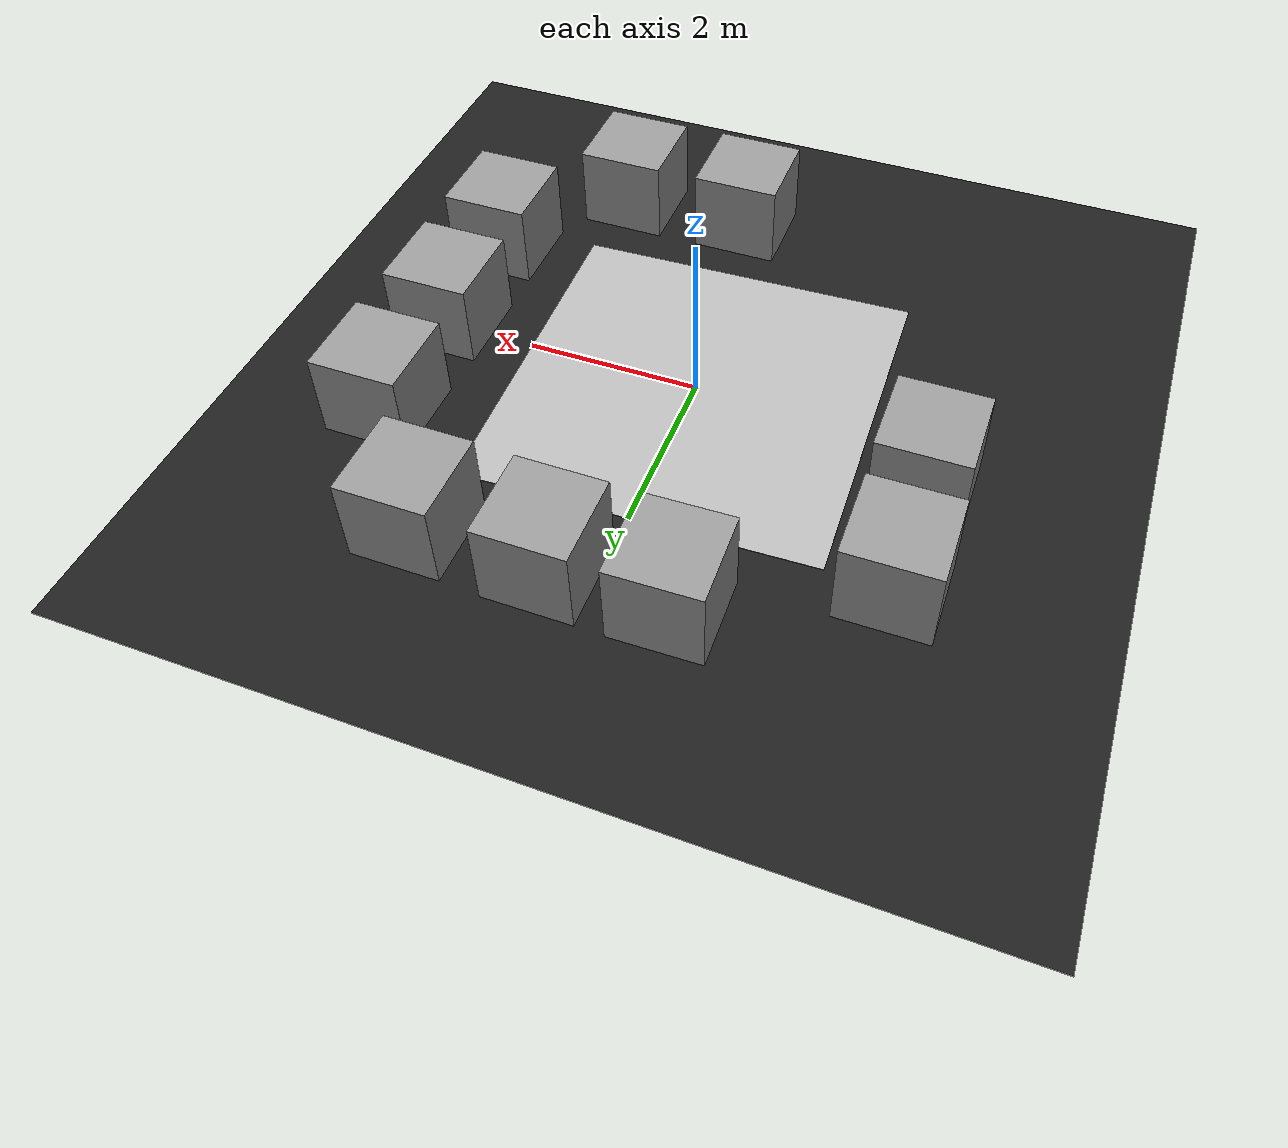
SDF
<sdf version="1.7">
 <world name="default">
  <scene>
   <ambient>0 0 0 1</ambient>
   <shadows>0</shadows>
   <grid>0</grid>
   <background>0.7 0.7 0.7 1</background>
  </scene>
  <model name="course">
   <static>1</static>
   <link name="course_link">
    <collision name="course_collision">
     <geometry><plane><normal>0 0 1</normal><size>4 4</size></plane></geometry>
     <surface><friction><ode><mu>100</mu><mu2>50</mu2></ode></friction></surface>
    </collision>
    <visual name="course_visual">
     <cast_shadows>0</cast_shadows>
     <geometry><plane><normal>0 0 1</normal><size>4 4</size></plane></geometry>
     <material>
      <script>
       <uri>model://turtlebot3_autorace/course/materials/scripts</uri>
       <uri>model://turtlebot3_autorace/course/materials/textures</uri>
       <name>course</name>
      </script>
     </material>
    </visual>
   </link>
   <pose>0 0 0 0 0 -1.54</pose>
  </model>
  <light name="sun" type="directional">
   <pose>0 0 10 0 -0 0</pose>
   <diffuse>0.8 0.8 0.8 1</diffuse>
   <specular>0.1 0.1 0.1 1</specular>
   <attenuation>
    <range>1000</range>
    <constant>0.9</constant>
    <linear>0.01</linear>
    <quadratic>0.001</quadratic>
   </attenuation>
   <direction>-0.5 0.5 -1</direction>
   <spot><inner_angle>0</inner_angle><outer_angle>0</outer_angle><falloff>0</falloff></spot>
  </light>
  <model name="ground2">
   <pose>0 0 -0.1 0 -0 0</pose>
   <static>1</static>
   <link name="ground">
    <collision name="ground_coll"><geometry><box><size>8 8 0.01</size></box></geometry></collision>
    <visual name="ground_vis">
     <geometry><box><size>10 10 0.01</size></box></geometry>
     <material>
      <script><uri>file://media/materials/scripts/gazebo.material</uri><name>Gazebo/FlatBlack</name></script>
     </material>
    </visual>
   </link>
  </model>
  <gravity>0 0 -9.8</gravity>
  <magnetic_field>6e-06 2.3e-05 -4.2e-05</magnetic_field>
  <atmosphere type="adiabatic"/>
  <physics name="default_physics" default="0" type="ode">
   <max_step_size>0.001</max_step_size>
   <real_time_factor>1</real_time_factor>
   <real_time_update_rate>1000</real_time_update_rate>
  </physics>
  <spherical_coordinates>
   <surface_model>EARTH_WGS84</surface_model>
   <latitude_deg>0</latitude_deg>
   <longitude_deg>0</longitude_deg>
   <elevation>0</elevation>
   <heading_deg>0</heading_deg>
  </spherical_coordinates>
  <light name="user_point_light_2" type="point">
   <pose>-0.948146 0.604519 1 0 -0 0</pose>
   <diffuse>0.5 0.5 0.5 1</diffuse>
   <specular>0.1 0.1 0.1 1</specular>
   <attenuation>
    <range>20</range>
    <constant>0.5</constant>
    <linear>0.01</linear>
    <quadratic>0.001</quadratic>
   </attenuation>
   <cast_shadows>0</cast_shadows>
   <direction>0 0 -1</direction>
   <spot><inner_angle>0</inner_angle><outer_angle>0</outer_angle><falloff>0</falloff></spot>
  </light>
  <light name="user_point_light_6" type="point">
   <pose>1.63854 1.69565 1 0 -0 0</pose>
   <diffuse>0.5 0.5 0.5 1</diffuse>
   <specular>0.1 0.1 0.1 1</specular>
   <attenuation>
    <range>20</range>
    <constant>0.5</constant>
    <linear>0.01</linear>
    <quadratic>0.001</quadratic>
   </attenuation>
   <cast_shadows>0</cast_shadows>
   <direction>0 0 -1</direction>
   <spot><inner_angle>0</inner_angle><outer_angle>0</outer_angle><falloff>0</falloff></spot>
  </light>
  <light name="user_point_light_7" type="point">
   <pose>0.42 -3.31 1 0 -0 0</pose>
   <diffuse>0.5 0.5 0.5 1</diffuse>
   <specular>0.1 0.1 0.1 1</specular>
   <attenuation>
    <range>20</range>
    <constant>0.5</constant>
    <linear>0.01</linear>
    <quadratic>0.001</quadratic>
   </attenuation>
   <cast_shadows>0</cast_shadows>
   <direction>0 0 -1</direction>
   <spot><inner_angle>0</inner_angle><outer_angle>0</outer_angle><falloff>0</falloff></spot>
  </light>
  <light name="user_point_light_8" type="point">
   <pose>-1.8 1.5 1 0 -0 0</pose>
   <diffuse>0.5 0.5 0.5 1</diffuse>
   <specular>0.1 0.1 0.1 1</specular>
   <attenuation>
    <range>20</range>
    <constant>0.5</constant>
    <linear>0.01</linear>
    <quadratic>0.001</quadratic>
   </attenuation>
   <cast_shadows>0</cast_shadows>
   <direction>0 0 -1</direction>
   <spot><inner_angle>0</inner_angle><outer_angle>0</outer_angle><falloff>0</falloff></spot>
  </light>
  <model name="unit_box">
   <pose>0.378808 -2.89736 0.499995 0 1e-05 0</pose>
   <link name="link">
    <inertial>
     <mass>1</mass>
     <inertia>
      <ixx>0.166667</ixx>
      <ixy>0</ixy>
      <ixz>0</ixz>
      <iyy>0.166667</iyy>
      <iyz>0</iyz>
      <izz>0.166667</izz>
     </inertia>
    </inertial>
    <collision name="collision"><geometry><box><size>1 1 1</size></box></geometry></collision>
    <visual name="visual">
     <geometry><box><size>1 1 1</size></box></geometry>
     <material>
      <script><name>Gazebo/Grey</name><uri>file://media/materials/scripts/gazebo.material</uri></script>
     </material>
    </visual>
   </link>
  </model>
  <model name="unit_box_0">
   <pose>3.03152 -1.53286 0.499995 0 1e-05 0</pose>
   <link name="link">
    <inertial>
     <mass>1</mass>
     <inertia>
      <ixx>0.166667</ixx>
      <ixy>0</ixy>
      <ixz>0</ixz>
      <iyy>0.166667</iyy>
      <iyz>0</iyz>
      <izz>0.166667</izz>
     </inertia>
    </inertial>
    <collision name="collision"><geometry><box><size>1 1 1</size></box></geometry></collision>
    <visual name="visual">
     <geometry><box><size>1 1 1</size></box></geometry>
     <material>
      <script><name>Gazebo/Grey</name><uri>file://media/materials/scripts/gazebo.material</uri></script>
     </material>
    </visual>
   </link>
  </model>
  <model name="unit_box_1">
   <pose>1.85465 -2.88429 0.499995 0 1e-05 0</pose>
   <link name="link">
    <inertial>
     <mass>1</mass>
     <inertia>
      <ixx>0.166667</ixx>
      <ixy>0</ixy>
      <ixz>0</ixz>
      <iyy>0.166667</iyy>
      <iyz>0</iyz>
      <izz>0.166667</izz>
     </inertia>
    </inertial>
    <collision name="collision"><geometry><box><size>1 1 1</size></box></geometry></collision>
    <visual name="visual">
     <geometry><box><size>1 1 1</size></box></geometry>
     <material>
      <script><name>Gazebo/Grey</name><uri>file://media/materials/scripts/gazebo.material</uri></script>
     </material>
    </visual>
   </link>
  </model>
  <model name="unit_box_2">
   <pose>3.02373 -0.039034 0.499995 1e-05 -0 0</pose>
   <link name="link">
    <inertial>
     <mass>1</mass>
     <inertia>
      <ixx>0.166667</ixx>
      <ixy>0</ixy>
      <ixz>0</ixz>
      <iyy>0.166667</iyy>
      <iyz>0</iyz>
      <izz>0.166667</izz>
     </inertia>
    </inertial>
    <collision name="collision"><geometry><box><size>1 1 1</size></box></geometry></collision>
    <visual name="visual">
     <geometry><box><size>1 1 1</size></box></geometry>
     <material>
      <script><name>Gazebo/Grey</name><uri>file://media/materials/scripts/gazebo.material</uri></script>
     </material>
    </visual>
   </link>
  </model>
  <model name="unit_box_3">
   <pose>3.04923 1.46592 0.499995 0 1e-05 0</pose>
   <link name="link">
    <inertial>
     <mass>1</mass>
     <inertia>
      <ixx>0.166667</ixx>
      <ixy>0</ixy>
      <ixz>0</ixz>
      <iyy>0.166667</iyy>
      <iyz>0</iyz>
      <izz>0.166667</izz>
     </inertia>
    </inertial>
    <collision name="collision"><geometry><box><size>1 1 1</size></box></geometry></collision>
    <visual name="visual">
     <geometry><box><size>1 1 1</size></box></geometry>
     <material>
      <script><name>Gazebo/Grey</name><uri>file://media/materials/scripts/gazebo.material</uri></script>
     </material>
    </visual>
   </link>
  </model>
  <model name="unit_box_4">
   <pose>1.92972 2.86524 0.499995 1e-05 -0 0</pose>
   <link name="link">
    <inertial>
     <mass>1</mass>
     <inertia>
      <ixx>0.166667</ixx>
      <ixy>0</ixy>
      <ixz>0</ixz>
      <iyy>0.166667</iyy>
      <iyz>0</iyz>
      <izz>0.166667</izz>
     </inertia>
    </inertial>
    <collision name="collision"><geometry><box><size>1 1 1</size></box></geometry></collision>
    <visual name="visual">
     <geometry><box><size>1 1 1</size></box></geometry>
     <material>
      <script><name>Gazebo/Grey</name><uri>file://media/materials/scripts/gazebo.material</uri></script>
     </material>
    </visual>
   </link>
  </model>
  <model name="unit_box_5">
   <pose>0.482406 2.8948 0.499995 0 1e-05 0</pose>
   <link name="link">
    <inertial>
     <mass>1</mass>
     <inertia>
      <ixx>0.166667</ixx>
      <ixy>0</ixy>
      <ixz>0</ixz>
      <iyy>0.166667</iyy>
      <iyz>0</iyz>
      <izz>0.166667</izz>
     </inertia>
    </inertial>
    <collision name="collision"><geometry><box><size>1 1 1</size></box></geometry></collision>
    <visual name="visual">
     <geometry><box><size>1 1 1</size></box></geometry>
     <material>
      <script><name>Gazebo/Grey</name><uri>file://media/materials/scripts/gazebo.material</uri></script>
     </material>
    </visual>
   </link>
  </model>
  <model name="unit_box_6">
   <pose>-0.822145 2.8925 0.499995 0 -1e-05 0.021775</pose>
   <link name="link">
    <inertial>
     <mass>1</mass>
     <inertia>
      <ixx>0.166667</ixx>
      <ixy>0</ixy>
      <ixz>0</ixz>
      <iyy>0.166667</iyy>
      <iyz>0</iyz>
      <izz>0.166667</izz>
     </inertia>
    </inertial>
    <collision name="collision"><geometry><box><size>1 1 1</size></box></geometry></collision>
    <visual name="visual">
     <geometry><box><size>1 1 1</size></box></geometry>
     <material>
      <script><name>Gazebo/Grey</name><uri>file://media/materials/scripts/gazebo.material</uri></script>
     </material>
    </visual>
   </link>
  </model>
  <model name="unit_box_7">
   <pose>-2.76066 1.944 0.499995 -0 -1e-05 0.005823</pose>
   <link name="link">
    <inertial>
     <mass>1</mass>
     <inertia>
      <ixx>0.166667</ixx>
      <ixy>0</ixy>
      <ixz>0</ixz>
      <iyy>0.166667</iyy>
      <iyz>0</iyz>
      <izz>0.166667</izz>
     </inertia>
    </inertial>
    <collision name="collision"><geometry><box><size>1 1 1</size></box></geometry></collision>
    <visual name="visual">
     <geometry><box><size>1 1 1</size></box></geometry>
     <material>
      <script><name>Gazebo/Grey</name><uri>file://media/materials/scripts/gazebo.material</uri></script>
     </material>
    </visual>
   </link>
  </model>
  <model name="unit_box_8">
   <pose>-2.72696 0.541477 0.499995 1e-05 -0 0</pose>
   <link name="link">
    <inertial>
     <mass>1</mass>
     <inertia>
      <ixx>0.166667</ixx>
      <ixy>0</ixy>
      <ixz>0</ixz>
      <iyy>0.166667</iyy>
      <iyz>0</iyz>
      <izz>0.166667</izz>
     </inertia>
    </inertial>
    <collision name="collision"><geometry><box><size>1 1 1</size></box></geometry></collision>
    <visual name="visual">
     <geometry><box><size>1 1 1</size></box></geometry>
     <material>
      <script><name>Gazebo/Grey</name><uri>file://media/materials/scripts/gazebo.material</uri></script>
     </material>
    </visual>
   </link>
  </model>
 </world>
</sdf>
